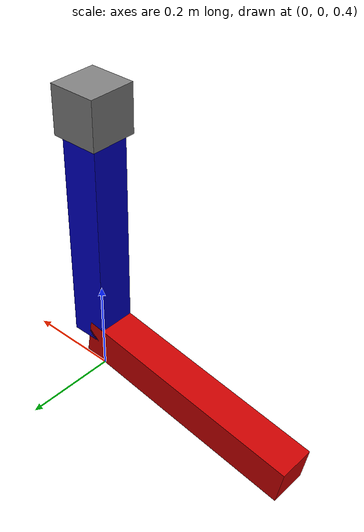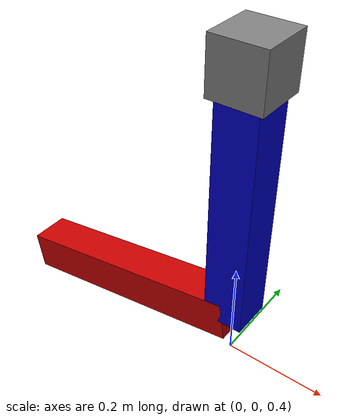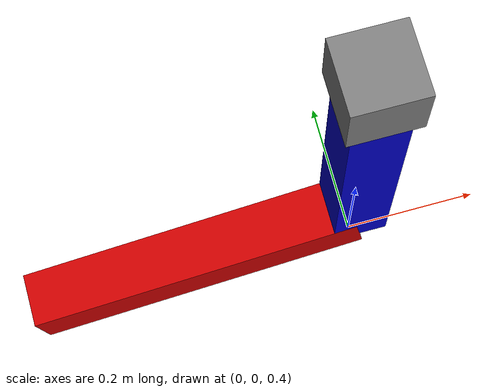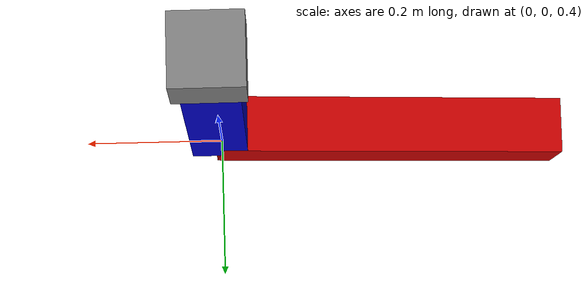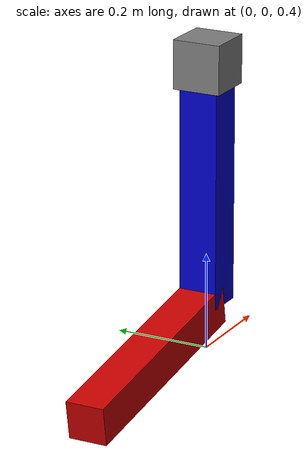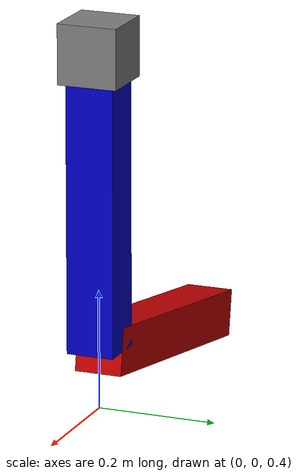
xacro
<?xml version="1.0"?>

<robot xmlns:xacro="http://www.ros.org/wiki/xacro" name="vision_arm">

    <xacro:property name="arm_mass" value="1.0" />
    <xacro:property name="arm_length" value="0.5" />
    <xacro:property name="arm_width" value="0.08" />

    <!-- Define an empty 'world' link so it can serve as the parent (root) -->
    <link name="world" />

    <link name="base_link">
        <visual>
            <geometry>
                <box size="0.1 0.1 0.1"/>
            </geometry>
            <material name="grey">
                <color rgba="0.5 0.5 0.5 1.0"/>
            </material>
        </visual>
        <collision>
            <geometry>
                <box size="0.1 0.1 0.1"/>
            </geometry>
        </collision>
        <inertial>
            <mass value="0.5"/>
            <inertia ixx="0.001" ixy="0" ixz="0" iyy="0.001" iyz="0" izz="0.001" />
        </inertial>
    </link>

    <joint name="world_to_base_joint" type="fixed">
        <parent link="world"/>
        <child link="base_link"/>
        <origin xyz="0 0 1" rpy="0 0 0"/>
    </joint>

    <link name="upper_arm_link">
        <visual>
            <geometry>
                <box size="${arm_width} ${arm_width} ${arm_length}"/>
            </geometry>
            <origin xyz="0 0 ${-arm_length/2.0}" rpy="0 0 0"/>
            <material name="blue">
                <color rgba="0.0 0.0 0.8 1.0"/>
            </material>
        </visual>
        <collision>
            <geometry>
                <box size="${arm_width} ${arm_width} ${arm_length}"/>
            </geometry>
            <origin xyz="0 0 ${-arm_length/2.0}" rpy="0 0 0"/>
        </collision>
        <inertial>
            <mass value="${arm_mass}"/>
            <origin xyz="0 0 ${-arm_length/2.0}" rpy="0 0 0"/>
            <inertia ixx="0.005" ixy="0.0" ixz="0.0"
                    iyy="0.005" iyz="0.0"
                    izz="0.001" />
        </inertial>
    </link>

    <joint name="base_to_upper_arm_joint" type="fixed">
        <parent link="base_link"/>
        <child link="upper_arm_link"/>
        <origin xyz="0 0 0" rpy="0 0 0"/>
    </joint>

    <link name="lower_arm_link">
        <visual>
            <geometry>
                <box size="${arm_width} ${arm_width} ${arm_length}"/>
            </geometry>
            <origin xyz="0 0 ${-arm_length/2.0}" rpy="0 0 0"/>
            <material name="red">
                <color rgba="0.8 0.0 0.0 1.0"/>
            </material>
        </visual>
        <collision>
            <geometry>
                <box size="${arm_width} ${arm_width} ${arm_length}"/>
            </geometry>
            <origin xyz="0 0 ${-arm_length/2.0}" rpy="0 0 0"/>
        </collision>
        <inertial>
            <mass value="${arm_mass}"/>
            <origin xyz="0 0 ${-arm_length/2.0}" rpy="0 0 0"/>
            <inertia ixx="0.005" ixy="0.0" ixz="0.0"
                    iyy="0.005" iyz="0.0"
                    izz="0.001" />
        </inertial>
    </link>

    <joint name="elbow_joint" type="revolute">
        <parent link="upper_arm_link"/>
        <child link="lower_arm_link"/>
        <origin xyz="0 0 ${-arm_length}" rpy="0 0 0"/>
        <axis xyz="0 1 0"/>
        <limit lower="0.1" upper="2.721" effort="100.0" velocity="1.0"/>
    </joint>

    <!-- Gazebo materials -->
    <gazebo reference="base_link">
        <material>Gazebo/Grey</material>
    </gazebo>
    <gazebo reference="upper_arm_link">
        <material>Gazebo/Blue</material>
    </gazebo>
    <gazebo reference="lower_arm_link">
        <material>Gazebo/Red</material>
    </gazebo>

    <!-- ROS 2 Control -->
    <ros2_control name="GazeboSystem" type="system">
        <hardware>
            <plugin>gz_ros2_control/GazeboSimSystem</plugin>
        </hardware>
        <joint name="elbow_joint">
            <command_interface name="position">
                <param name="min">0.1</param>
                <param name="max">2.721</param>
            </command_interface>
            <state_interface name="position"/>
            <state_interface name="velocity"/>
            <state_interface name="effort"/>
        </joint>
    </ros2_control>

    <!-- Gazebo ROS 2 Control Plugin -->
    <gazebo>
        <plugin filename="ign_ros2_control-system"
                name="ign_ros2_control::IgnitionROS2ControlPlugin">
            <parameters>$(find cv_arm)/config/elbow_controllers.yaml</parameters>
        </plugin>
    </gazebo>

</robot>
